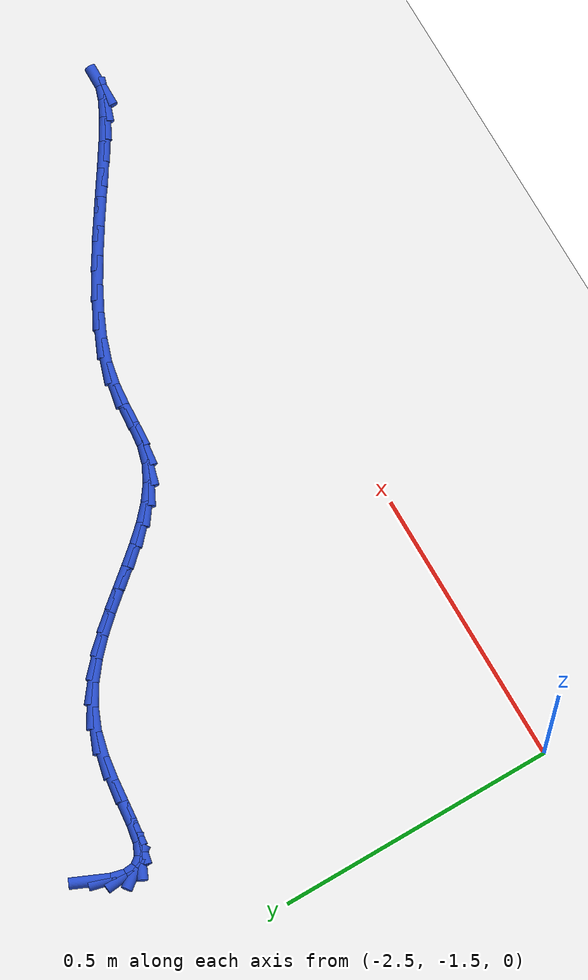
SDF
<sdf version="1.6">
 <world name="default">
  <model name="ground_plane">
   <static>1</static>
   <link name="link">
    <collision name="collision">
     <geometry><plane><normal>0 0 1</normal><size>100 100</size></plane></geometry>
     <surface><friction><ode><mu>100</mu><mu2>50</mu2></ode></friction></surface>
    </collision>
    <visual name="visual">
     <cast_shadows>0</cast_shadows>
     <geometry><plane><normal>0 0 1</normal><size>100 100</size></plane></geometry>
     <material>
      <script><uri>file://media/materials/scripts/gazebo.material</uri><name>Gazebo/WhiteGlow</name></script>
     </material>
    </visual>
   </link>
  </model>
  <model name="line">
   <link name="link_133">
    <pose>-2.302608162771287 -0.7413937532321153 0.01 0 1.57 1.1524849078441046</pose>
    <collision name="collision">
     <geometry><cylinder><radius>0.01</radius><length>0.08</length></cylinder></geometry>
    </collision>
    <visual name="visual">
     <material>
      <script><name>Gazebo/Blue</name><uri>file://media/materials/scripts/gazebo.material</uri></script>
     </material>
     <geometry><cylinder><radius>0.01</radius><length>0.08</length></cylinder></geometry>
    </visual>
   </link>
   <link name="link_134">
    <pose>-2.3154333518743977 -0.7702436586061489 0.01 0 1.57 1.3266004614899507</pose>
    <collision name="collision">
     <geometry><cylinder><radius>0.01</radius><length>0.08</length></cylinder></geometry>
    </collision>
    <visual name="visual">
     <material>
      <script><name>Gazebo/Blue</name><uri>file://media/materials/scripts/gazebo.material</uri></script>
     </material>
     <geometry><cylinder><radius>0.01</radius><length>0.08</length></cylinder></geometry>
    </visual>
   </link>
   <link name="link_135">
    <pose>-2.3215430984892222 -0.7947642063037689 0.01 0 1.57 -1.4712842473940815</pose>
    <collision name="collision">
     <geometry><cylinder><radius>0.01</radius><length>0.08</length></cylinder></geometry>
    </collision>
    <visual name="visual">
     <material>
      <script><name>Gazebo/Blue</name><uri>file://media/materials/scripts/gazebo.material</uri></script>
     </material>
     <geometry><cylinder><radius>0.01</radius><length>0.08</length></cylinder></geometry>
    </visual>
   </link>
   <link name="link_136">
    <pose>-2.3195516829298177 -0.8147099032943295 0.01 0 1.57 -0.921637485830242</pose>
    <collision name="collision">
     <geometry><cylinder><radius>0.01</radius><length>0.08</length></cylinder></geometry>
    </collision>
    <visual name="visual">
     <material>
      <script><name>Gazebo/Blue</name><uri>file://media/materials/scripts/gazebo.material</uri></script>
     </material>
     <geometry><cylinder><radius>0.01</radius><length>0.08</length></cylinder></geometry>
    </visual>
   </link>
   <link name="link_137">
    <pose>-2.3080733855102413 -0.8298352565471865 0.01 0 1.57 -0.43001532506234025</pose>
    <collision name="collision">
     <geometry><cylinder><radius>0.01</radius><length>0.08</length></cylinder></geometry>
    </collision>
    <visual name="visual">
     <material>
      <script><name>Gazebo/Blue</name><uri>file://media/materials/scripts/gazebo.material</uri></script>
     </material>
     <geometry><cylinder><radius>0.01</radius><length>0.08</length></cylinder></geometry>
    </visual>
   </link>
   <link name="link_138">
    <pose>-2.285913874504277 -0.8399984851917622 0.01 0 1.57 -0.1971323774355971</pose>
    <collision name="collision">
     <geometry><cylinder><radius>0.01</radius><length>0.08</length></cylinder></geometry>
    </collision>
    <visual name="visual">
     <material>
      <script><name>Gazebo/Blue</name><uri>file://media/materials/scripts/gazebo.material</uri></script>
     </material>
     <geometry><cylinder><radius>0.01</radius><length>0.08</length></cylinder></geometry>
    </visual>
   </link>
   <link name="link_139">
    <pose>-2.2542228353770555 -0.8463280193284025 0.01 0 1.57 -0.11572107517469322</pose>
    <collision name="collision">
     <geometry><cylinder><radius>0.01</radius><length>0.08</length></cylinder></geometry>
    </collision>
    <visual name="visual">
     <material>
      <script><name>Gazebo/Blue</name><uri>file://media/materials/scripts/gazebo.material</uri></script>
     </material>
     <geometry><cylinder><radius>0.01</radius><length>0.08</length></cylinder></geometry>
    </visual>
   </link>
   <link name="link_140">
    <pose>-2.215720783363463 -0.8508035137047633 0.01 0 1.57 -0.10804566987130511</pose>
    <collision name="collision">
     <geometry><cylinder><radius>0.01</radius><length>0.08</length></cylinder></geometry>
    </collision>
    <visual name="visual">
     <material>
      <script><name>Gazebo/Blue</name><uri>file://media/materials/scripts/gazebo.material</uri></script>
     </material>
     <geometry><cylinder><radius>0.01</radius><length>0.08</length></cylinder></geometry>
    </visual>
   </link>
   <link name="link_141">
    <pose>-2.17315717552623 -0.8554203064975224 0.01 0 1.57 -0.15272326140024806</pose>
    <collision name="collision">
     <geometry><cylinder><radius>0.01</radius><length>0.08</length></cylinder></geometry>
    </collision>
    <visual name="visual">
     <material>
      <script><name>Gazebo/Blue</name><uri>file://media/materials/scripts/gazebo.material</uri></script>
     </material>
     <geometry><cylinder><radius>0.01</radius><length>0.08</length></cylinder></geometry>
    </visual>
   </link>
   <link name="link_142">
    <pose>-2.129281468928086 -0.8621737358833588 0.01 0 1.57 -0.25108617087107543</pose>
    <collision name="collision">
     <geometry><cylinder><radius>0.01</radius><length>0.08</length></cylinder></geometry>
    </collision>
    <visual name="visual">
     <material>
      <script><name>Gazebo/Blue</name><uri>file://media/materials/scripts/gazebo.material</uri></script>
     </material>
     <geometry><cylinder><radius>0.01</radius><length>0.08</length></cylinder></geometry>
    </visual>
   </link>
   <link name="link_143">
    <pose>-2.0868431202559785 -0.8730591396960539 0.01 0 1.57 -0.40181492263563034</pose>
    <collision name="collision">
     <geometry><cylinder><radius>0.01</radius><length>0.08</length></cylinder></geometry>
    </collision>
    <visual name="visual">
     <material>
      <script><name>Gazebo/Blue</name><uri>file://media/materials/scripts/gazebo.material</uri></script>
     </material>
     <geometry><cylinder><radius>0.01</radius><length>0.08</length></cylinder></geometry>
    </visual>
   </link>
   <link name="link_144">
    <pose>-2.0480245765070593 -0.8895544669740383 0.01 0 1.57 -0.5493959206552715</pose>
    <collision name="collision">
     <geometry><cylinder><radius>0.01</radius><length>0.08</length></cylinder></geometry>
    </collision>
    <visual name="visual">
     <material>
      <script><name>Gazebo/Blue</name><uri>file://media/materials/scripts/gazebo.material</uri></script>
     </material>
     <geometry><cylinder><radius>0.01</radius><length>0.08</length></cylinder></geometry>
    </visual>
   </link>
   <link name="link_145">
    <pose>-2.0127993021611066 -0.9111219996089689 0.01 0 1.57 -0.6719717282275354</pose>
    <collision name="collision">
     <geometry><cylinder><radius>0.01</radius><length>0.08</length></cylinder></geometry>
    </collision>
    <visual name="visual">
     <material>
      <script><name>Gazebo/Blue</name><uri>file://media/materials/scripts/gazebo.material</uri></script>
     </material>
     <geometry><cylinder><radius>0.01</radius><length>0.08</length></cylinder></geometry>
    </visual>
   </link>
   <link name="link_146">
    <pose>-1.9806028976680117 -0.9367332257239103 0.01 0 1.57 -0.7664566681573596</pose>
    <collision name="collision">
     <geometry><cylinder><radius>0.01</radius><length>0.08</length></cylinder></geometry>
    </collision>
    <visual name="visual">
     <material>
      <script><name>Gazebo/Blue</name><uri>file://media/materials/scripts/gazebo.material</uri></script>
     </material>
     <geometry><cylinder><radius>0.01</radius><length>0.08</length></cylinder></geometry>
    </visual>
   </link>
   <link name="link_147">
    <pose>-1.9508709634776702 -0.9653596334419275 0.01 0 1.57 -0.8329491994072742</pose>
    <collision name="collision">
     <geometry><cylinder><radius>0.01</radius><length>0.08</length></cylinder></geometry>
    </collision>
    <visual name="visual">
     <material>
      <script><name>Gazebo/Blue</name><uri>file://media/materials/scripts/gazebo.material</uri></script>
     </material>
     <geometry><cylinder><radius>0.01</radius><length>0.08</length></cylinder></geometry>
    </visual>
   </link>
   <link name="link_148">
    <pose>-1.9230391000399742 -0.9959727108860859 0.01 0 1.57 -0.872575778910711</pose>
    <collision name="collision">
     <geometry><cylinder><radius>0.01</radius><length>0.08</length></cylinder></geometry>
    </collision>
    <visual name="visual">
     <material>
      <script><name>Gazebo/Blue</name><uri>file://media/materials/scripts/gazebo.material</uri></script>
     </material>
     <geometry><cylinder><radius>0.01</radius><length>0.08</length></cylinder></geometry>
    </visual>
   </link>
   <link name="link_149">
    <pose>-1.8965429078048202 -1.0275439461794484 0.01 0 1.57 -0.8859902993658474</pose>
    <collision name="collision">
     <geometry><cylinder><radius>0.01</radius><length>0.08</length></cylinder></geometry>
    </collision>
    <visual name="visual">
     <material>
      <script><name>Gazebo/Blue</name><uri>file://media/materials/scripts/gazebo.material</uri></script>
     </material>
     <geometry><cylinder><radius>0.01</radius><length>0.08</length></cylinder></geometry>
    </visual>
   </link>
   <link name="link_150">
    <pose>-1.8708179872221016 -1.059044827445081 0.01 0 1.57 -0.8725154660403253</pose>
    <collision name="collision">
     <geometry><cylinder><radius>0.01</radius><length>0.08</length></cylinder></geometry>
    </collision>
    <visual name="visual">
     <material>
      <script><name>Gazebo/Blue</name><uri>file://media/materials/scripts/gazebo.material</uri></script>
     </material>
     <geometry><cylinder><radius>0.01</radius><length>0.08</length></cylinder></geometry>
    </visual>
   </link>
   <link name="link_151">
    <pose>-1.8452999387417117 -1.0894468428060473 0.01 0 1.57 -0.8296730368025484</pose>
    <collision name="collision">
     <geometry><cylinder><radius>0.01</radius><length>0.08</length></cylinder></geometry>
    </collision>
    <visual name="visual">
     <material>
      <script><name>Gazebo/Blue</name><uri>file://media/materials/scripts/gazebo.material</uri></script>
     </material>
     <geometry><cylinder><radius>0.01</radius><length>0.08</length></cylinder></geometry>
    </visual>
   </link>
   <link name="link_152">
    <pose>-1.8194243628135451 -1.1177214803854125 0.01 0 1.57 -0.7530735975957122</pose>
    <collision name="collision">
     <geometry><cylinder><radius>0.01</radius><length>0.08</length></cylinder></geometry>
    </collision>
    <visual name="visual">
     <material>
      <script><name>Gazebo/Blue</name><uri>file://media/materials/scripts/gazebo.material</uri></script>
     </material>
     <geometry><cylinder><radius>0.01</radius><length>0.08</length></cylinder></geometry>
    </visual>
   </link>
   <link name="link_153">
    <pose>-1.7926268598874953 -1.1428402283062418 0.01 0 1.57 -0.6371688455598608</pose>
    <collision name="collision">
     <geometry><cylinder><radius>0.01</radius><length>0.08</length></cylinder></geometry>
    </collision>
    <visual name="visual">
     <material>
      <script><name>Gazebo/Blue</name><uri>file://media/materials/scripts/gazebo.material</uri></script>
     </material>
     <geometry><cylinder><radius>0.01</radius><length>0.08</length></cylinder></geometry>
    </visual>
   </link>
   <link name="link_154">
    <pose>-1.764343030413458 -1.1637745746915984 0.01 0 1.57 -0.47815506710932054</pose>
    <collision name="collision">
     <geometry><cylinder><radius>0.01</radius><length>0.08</length></cylinder></geometry>
    </collision>
    <visual name="visual">
     <material>
      <script><name>Gazebo/Blue</name><uri>file://media/materials/scripts/gazebo.material</uri></script>
     </material>
     <geometry><cylinder><radius>0.01</radius><length>0.08</length></cylinder></geometry>
    </visual>
   </link>
   <link name="link_155">
    <pose>-1.7340084748413265 -1.179496007664548 0.01 0 1.57 -0.2818854376544952</pose>
    <collision name="collision">
     <geometry><cylinder><radius>0.01</radius><length>0.08</length></cylinder></geometry>
    </collision>
    <visual name="visual">
     <material>
      <script><name>Gazebo/Blue</name><uri>file://media/materials/scripts/gazebo.material</uri></script>
     </material>
     <geometry><cylinder><radius>0.01</radius><length>0.08</length></cylinder></geometry>
    </visual>
   </link>
   <link name="link_156">
    <pose>-1.7010698087365261 -1.1890349391502117 0.01 0 1.57 -0.12050976069207155</pose>
    <collision name="collision">
     <geometry><cylinder><radius>0.01</radius><length>0.08</length></cylinder></geometry>
    </collision>
    <visual name="visual">
     <material>
      <script><name>Gazebo/Blue</name><uri>file://media/materials/scripts/gazebo.material</uri></script>
     </material>
     <geometry><cylinder><radius>0.01</radius><length>0.08</length></cylinder></geometry>
    </visual>
   </link>
   <link name="link_157">
    <pose>-1.665336374040583 -1.193362134502147 0.01 0 1.57 -0.06315726677506252</pose>
    <collision name="collision">
     <geometry><cylinder><radius>0.01</radius><length>0.08</length></cylinder></geometry>
    </collision>
    <visual name="visual">
     <material>
      <script><name>Gazebo/Blue</name><uri>file://media/materials/scripts/gazebo.material</uri></script>
     </material>
     <geometry><cylinder><radius>0.01</radius><length>0.08</length></cylinder></geometry>
    </visual>
   </link>
   <link name="link_158">
    <pose>-1.6270539775241724 -1.1957831659240012 0.01 0 1.57 -0.09730363043559474</pose>
    <collision name="collision">
     <geometry><cylinder><radius>0.01</radius><length>0.08</length></cylinder></geometry>
    </collision>
    <visual name="visual">
     <material>
      <script><name>Gazebo/Blue</name><uri>file://media/materials/scripts/gazebo.material</uri></script>
     </material>
     <geometry><cylinder><radius>0.01</radius><length>0.08</length></cylinder></geometry>
    </visual>
   </link>
   <link name="link_159">
    <pose>-1.58649434727031 -1.1997422680123038 0.01 0 1.57 -0.20608349882266047</pose>
    <collision name="collision">
     <geometry><cylinder><radius>0.01</radius><length>0.08</length></cylinder></geometry>
    </collision>
    <visual name="visual">
     <material>
      <script><name>Gazebo/Blue</name><uri>file://media/materials/scripts/gazebo.material</uri></script>
     </material>
     <geometry><cylinder><radius>0.01</radius><length>0.08</length></cylinder></geometry>
    </visual>
   </link>
   <link name="link_160">
    <pose>-1.5439327077570164 -1.2086398388449127 0.01 0 1.57 -0.334067869734295</pose>
    <collision name="collision">
     <geometry><cylinder><radius>0.01</radius><length>0.08</length></cylinder></geometry>
    </collision>
    <visual name="visual">
     <material>
      <script><name>Gazebo/Blue</name><uri>file://media/materials/scripts/gazebo.material</uri></script>
     </material>
     <geometry><cylinder><radius>0.01</radius><length>0.08</length></cylinder></geometry>
    </visual>
   </link>
   <link name="link_161">
    <pose>-1.499797268478437 -1.223958206457417 0.01 0 1.57 -0.42867237700647115</pose>
    <collision name="collision">
     <geometry><cylinder><radius>0.01</radius><length>0.08</length></cylinder></geometry>
    </collision>
    <visual name="visual">
     <material>
      <script><name>Gazebo/Blue</name><uri>file://media/materials/scripts/gazebo.material</uri></script>
     </material>
     <geometry><cylinder><radius>0.01</radius><length>0.08</length></cylinder></geometry>
    </visual>
   </link>
   <link name="link_162">
    <pose>-1.454725448142088 -1.2445567104719242 0.01 0 1.57 -0.4961013350159488</pose>
    <collision name="collision">
     <geometry><cylinder><radius>0.01</radius><length>0.08</length></cylinder></geometry>
    </collision>
    <visual name="visual">
     <material>
      <script><name>Gazebo/Blue</name><uri>file://media/materials/scripts/gazebo.material</uri></script>
     </material>
     <geometry><cylinder><radius>0.01</radius><length>0.08</length></cylinder></geometry>
    </visual>
   </link>
   <link name="link_163">
    <pose>-1.4093697531566418 -1.2691055264451703 0.01 0 1.57 -0.5433085355829128</pose>
    <collision name="collision">
     <geometry><cylinder><radius>0.01</radius><length>0.08</length></cylinder></geometry>
    </collision>
    <visual name="visual">
     <material>
      <script><name>Gazebo/Blue</name><uri>file://media/materials/scripts/gazebo.material</uri></script>
     </material>
     <geometry><cylinder><radius>0.01</radius><length>0.08</length></cylinder></geometry>
    </visual>
   </link>
   <link name="link_164">
    <pose>-1.364382689930769 -1.2962748299338933 0.01 0 1.57 -0.5744880074474736</pose>
    <collision name="collision">
     <geometry><cylinder><radius>0.01</radius><length>0.08</length></cylinder></geometry>
    </collision>
    <visual name="visual">
     <material>
      <script><name>Gazebo/Blue</name><uri>file://media/materials/scripts/gazebo.material</uri></script>
     </material>
     <geometry><cylinder><radius>0.01</radius><length>0.08</length></cylinder></geometry>
    </visual>
   </link>
   <link name="link_165">
    <pose>-1.3204167648731395 -1.3247347964948304 0.01 0 1.57 -0.5916922249522865</pose>
    <collision name="collision">
     <geometry><cylinder><radius>0.01</radius><length>0.08</length></cylinder></geometry>
    </collision>
    <visual name="visual">
     <material>
      <script><name>Gazebo/Blue</name><uri>file://media/materials/scripts/gazebo.material</uri></script>
     </material>
     <geometry><cylinder><radius>0.01</radius><length>0.08</length></cylinder></geometry>
    </visual>
   </link>
   <link name="link_166">
    <pose>-1.2781244843924233 -1.3531556016847193 0.01 0 1.57 -0.5950322859433342</pose>
    <collision name="collision">
     <geometry><cylinder><radius>0.01</radius><length>0.08</length></cylinder></geometry>
    </collision>
    <visual name="visual">
     <material>
      <script><name>Gazebo/Blue</name><uri>file://media/materials/scripts/gazebo.material</uri></script>
     </material>
     <geometry><cylinder><radius>0.01</radius><length>0.08</length></cylinder></geometry>
    </visual>
   </link>
   <link name="link_167">
    <pose>-1.238158354897294 -1.3802074210602961 0.01 0 1.57 -0.5822662987843706</pose>
    <collision name="collision">
     <geometry><cylinder><radius>0.01</radius><length>0.08</length></cylinder></geometry>
    </collision>
    <visual name="visual">
     <material>
      <script><name>Gazebo/Blue</name><uri>file://media/materials/scripts/gazebo.material</uri></script>
     </material>
     <geometry><cylinder><radius>0.01</radius><length>0.08</length></cylinder></geometry>
    </visual>
   </link>
   <link name="link_168">
    <pose>-1.2011708827964207 -1.404560430178299 0.01 0 1.57 -0.5472379034319383</pose>
    <collision name="collision">
     <geometry><cylinder><radius>0.01</radius><length>0.08</length></cylinder></geometry>
    </collision>
    <visual name="visual">
     <material>
      <script><name>Gazebo/Blue</name><uri>file://media/materials/scripts/gazebo.material</uri></script>
     </material>
     <geometry><cylinder><radius>0.01</radius><length>0.08</length></cylinder></geometry>
    </visual>
   </link>
   <link name="link_169">
    <pose>-1.1678145744984736 -1.4248848045954645 0.01 0 1.57 -0.4753989276813083</pose>
    <collision name="collision">
     <geometry><cylinder><radius>0.01</radius><length>0.08</length></cylinder></geometry>
    </collision>
    <visual name="visual">
     <material>
      <script><name>Gazebo/Blue</name><uri>file://media/materials/scripts/gazebo.material</uri></script>
     </material>
     <geometry><cylinder><radius>0.01</radius><length>0.08</length></cylinder></geometry>
    </visual>
   </link>
   <link name="link_170">
    <pose>-1.138741936412124 -1.4398507198685309 0.01 0 1.57 -0.3303816369549239</pose>
    <collision name="collision">
     <geometry><cylinder><radius>0.01</radius><length>0.08</length></cylinder></geometry>
    </collision>
    <visual name="visual">
     <material>
      <script><name>Gazebo/Blue</name><uri>file://media/materials/scripts/gazebo.material</uri></script>
     </material>
     <geometry><cylinder><radius>0.01</radius><length>0.08</length></cylinder></geometry>
    </visual>
   </link>
   <link name="link_171">
    <pose>-1.114605474946044 -1.4481283515542345 0.01 0 1.57 -0.013991256223149498</pose>
    <collision name="collision">
     <geometry><cylinder><radius>0.01</radius><length>0.08</length></cylinder></geometry>
    </collision>
    <visual name="visual">
     <material>
      <script><name>Gazebo/Blue</name><uri>file://media/materials/scripts/gazebo.material</uri></script>
     </material>
     <geometry><cylinder><radius>0.01</radius><length>0.08</length></cylinder></geometry>
    </visual>
   </link>
  </model>
 </world>
</sdf>
